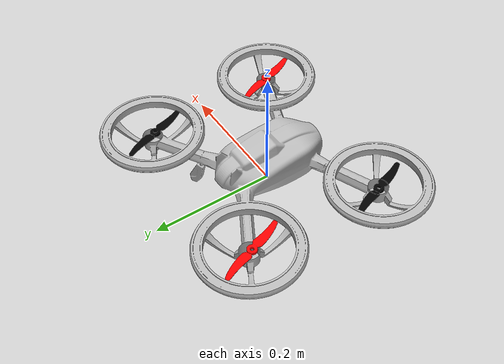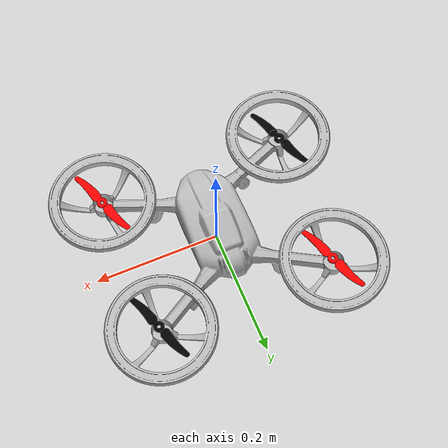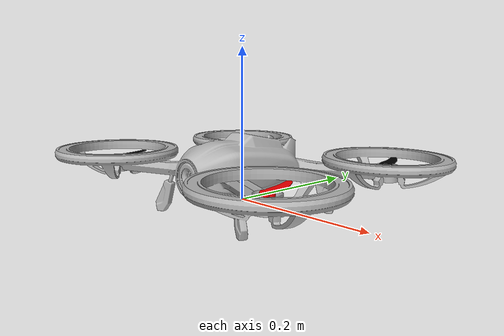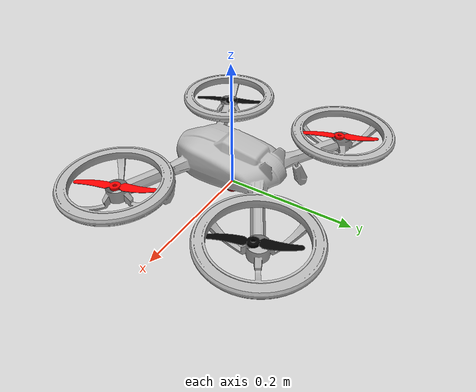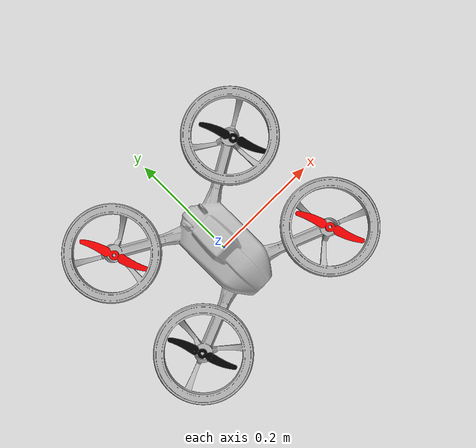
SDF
<?xml version="1.0" ?>
<sdf version="1.8">
  <model name="meu_drone_v2">

    <link name="base_link">
      <pose>0 0 0.04 0 0 0</pose>
      <inertial>
        <mass>1.5</mass>
        <inertia>
          <ixx>0.0547</ixx> <iyy>0.0558</iyy> <izz>0.0900</izz>
          <ixy>0</ixy> <ixz>0</ixz> <iyz>0</iyz>
        </inertia>
      </inertial>

      <visual name="base_link_visual">
        <pose>0 0 0 0 0 0</pose>
        <geometry>
          <mesh>
            <uri>model://meu_drone/meshes/Drone_corpo_fixed.stl</uri>
            <scale>0.001 0.001 0.001</scale>
          </mesh>
        </geometry>
      </visual>

      <collision name="base_link_collision">
        <pose>0 0 0 0 0 0</pose>
        <geometry>
          <mesh>
            <uri>model://meu_drone/meshes/Drone_corpo_fixed.stl</uri>
            <scale>0.001 0.001 0.001</scale>
          </mesh>
        </geometry>
      </collision>
    </link>

    <link name="rotor_0">
      <pose>0.15 -0.10 0.05 0 0 0</pose> <inertial>
        <mass>0.005</mass>
        <inertia><ixx>0.0001</ixx> <iyy>0.0001</iyy> <izz>0.0001</izz></inertia>
      </inertial>
      <visual name="rotor_0_visual">
        <pose>0 0 0 0 0 0</pose> <geometry>
          <mesh>
            <uri>model://meu_drone/meshes/helice.STL</uri>
            <scale>0.001 0.001 0.001</scale>
          </mesh>
        </geometry>
        <material><ambient>1 0 0 1</ambient></material> </visual>
      <collision name="rotor_0_collision">
         <geometry><cylinder><radius>0.06</radius><length>0.01</length></cylinder></geometry>
      </collision>
    </link>

    <joint name="rotor_0_joint" type="revolute">
      <parent>base_link</parent>
      <child>rotor_0</child>
      <axis>
        <xyz>0 0 1</xyz>
        <limit><lower>-1e16</lower> <upper>1e16</upper></limit>
      </axis>
    </joint>

    <link name="rotor_1">
      <pose>-0.14 0.12 0.05 0 0 0</pose>
      <inertial>
        <mass>0.005</mass>
        <inertia><ixx>0.0001</ixx> <iyy>0.0001</iyy> <izz>0.0001</izz></inertia>
      </inertial>
      <visual name="rotor_1_visual">
        <pose>0 0 0 0 0 0</pose>
        <geometry>
          <mesh>
            <uri>model://meu_drone/meshes/helice.STL</uri>
            <scale>0.001 0.001 0.001</scale>
          </mesh>
        </geometry>
        <material><ambient>1 0 0 1</ambient></material> </visual>
      <collision name="rotor_1_collision">
         <geometry><cylinder><radius>0.06</radius><length>0.01</length></cylinder></geometry>
      </collision>
    </link>

    <joint name="rotor_1_joint" type="revolute">
      <parent>base_link</parent>
      <child>rotor_1</child>
      <axis>
        <xyz>0 0 1</xyz>
        <limit><lower>-1e16</lower> <upper>1e16</upper></limit>
      </axis>
    </joint>

    <link name="rotor_2">
      <pose>0.14 0.12 0.05 0 0 0</pose>
      <inertial>
        <mass>0.005</mass>
        <inertia><ixx>0.0001</ixx> <iyy>0.0001</iyy> <izz>0.0001</izz></inertia>
      </inertial>
      <visual name="rotor_2_visual">
        <pose>0 0 0 0 0 0</pose>
        <geometry>
          <mesh>
            <uri>model://meu_drone/meshes/helice.STL</uri>
            <scale>0.001 0.001 0.001</scale>
          </mesh>
        </geometry>
        <material><ambient>0 0 0 1</ambient></material> </visual>
      <collision name="rotor_2_collision">
         <geometry><cylinder><radius>0.06</radius><length>0.01</length></cylinder></geometry>
      </collision>
    </link>

    <joint name="rotor_2_joint" type="revolute">
      <parent>base_link</parent>
      <child>rotor_2</child>
      <axis>
        <xyz>0 0 1</xyz>
        <limit><lower>-1e16</lower> <upper>1e16</upper></limit>
      </axis>
    </joint>

    <link name="rotor_3">
      <pose>-0.15 -0.10 0.05 0 0 0</pose>
      <inertial>
        <mass>0.005</mass>
        <inertia><ixx>0.0001</ixx> <iyy>0.0001</iyy> <izz>0.0001</izz></inertia>
      </inertial>
      <visual name="rotor_3_visual">
        <pose>0 0 0 0 0 0</pose>
        <geometry>
          <mesh>
            <uri>model://meu_drone/meshes/helice.STL</uri>
            <scale>0.001 0.001 0.001</scale>
          </mesh>
        </geometry>
        <material><ambient>0 0 0 1</ambient></material> </visual>
      <collision name="rotor_3_collision">
         <geometry><cylinder><radius>0.06</radius><length>0.01</length></cylinder></geometry>
      </collision>
    </link>

    <joint name="rotor_3_joint" type="revolute">
      <parent>base_link</parent>
      <child>rotor_3</child>
      <axis>
        <xyz>0 0 1</xyz>
        <limit><lower>-1e16</lower> <upper>1e16</upper></limit>
      </axis>
    </joint>

    <link name="tether_attach">
      <pose>0 0 -0.007 0 0 0</pose>
      <inertial>
        <mass>0.001</mass>
        <inertia>
          <ixx>1e-6</ixx> <iyy>1e-6</iyy> <izz>1e-6</izz>
          <ixy>0</ixy> <ixz>0</ixz> <iyz>0</iyz>
        </inertia>
      </inertial>
      <visual name="visual_tether_attach">
        <geometry><sphere><radius>0.012</radius></sphere></geometry>
        <material>
          <ambient>0.6 0.05 0.05 1</ambient>
          <diffuse>0.6 0.05 0.05 1</diffuse>
        </material>
      </visual>
      <collision name="collision_tether_attach">
        <geometry><sphere><radius>0.006</radius></sphere></geometry>
      </collision>
    </link>

    <joint name="tether_attach_fixed_joint" type="fixed">
      <parent>base_link</parent>
      <child>tether_attach</child>
    </joint>

    <plugin
      filename="gz-sim-multicopter-control-system"
      name="gz::sim::systems::MulticopterVelocityControl">
      <robotNamespace>meu_drone</robotNamespace>
      <commandSubTopic>cmd_vel</commandSubTopic>
      <comLinkName>base_link</comLinkName>
      <velocityGain>4.0 4.0 6.0</velocityGain>
      <attitudeGain>2 3 0.15</attitudeGain>
      <angularRateGain>4.0 4.0 0.5</angularRateGain>

      <rotorConfiguration>
        <rotor>
          <jointName>rotor_0_joint</jointName>
          <forceConstant>1.5e-03</forceConstant>
          <momentConstant>0.090</momentConstant>
          <direction>-1</direction>
        </rotor>
        <rotor>
          <jointName>rotor_1_joint</jointName>
          <forceConstant>1.5e-03</forceConstant>
          <momentConstant>0.090</momentConstant>
          <direction>-1</direction>
        </rotor>
        <rotor>
          <jointName>rotor_2_joint</jointName>
          <forceConstant>1.5e-03</forceConstant>
          <momentConstant>0.090</momentConstant>
          <direction>1</direction>
        </rotor>
        <rotor>
          <jointName>rotor_3_joint</jointName>
          <forceConstant>1.5e-03</forceConstant>
          <momentConstant>0.090</momentConstant>
          <direction>1</direction>
        </rotor>
      </rotorConfiguration>
    </plugin>

    <plugin filename="gz-sim-multicopter-motor-model-system" name="gz::sim::systems::MulticopterMotorModel">
      <jointName>rotor_0_joint</jointName>
      <linkName>rotor_0</linkName>
      <motorNumber>0</motorNumber>
      <turningDirection>cw</turningDirection>
      <motorConstant>1.5e-03</motorConstant>
      <momentConstant>0.090</momentConstant>
      <maxRotVelocity>10000</maxRotVelocity>
      <rotorVelocitySlowdownSim>1</rotorVelocitySlowdownSim>
      <robotNamespace>meu_drone</robotNamespace>
    </plugin>

    <plugin filename="gz-sim-multicopter-motor-model-system" name="gz::sim::systems::MulticopterMotorModel">
      <jointName>rotor_1_joint</jointName>
      <linkName>rotor_1</linkName>
      <motorNumber>1</motorNumber>
      <turningDirection>cw</turningDirection>
      <motorConstant>1.5e-03</motorConstant>
      <momentConstant>0.090</momentConstant>
      <maxRotVelocity>10000</maxRotVelocity>
      <rotorVelocitySlowdownSim>1</rotorVelocitySlowdownSim>
      <robotNamespace>meu_drone</robotNamespace>
    </plugin>

    <plugin filename="gz-sim-multicopter-motor-model-system" name="gz::sim::systems::MulticopterMotorModel">
      <jointName>rotor_2_joint</jointName>
      <linkName>rotor_2</linkName>
      <motorNumber>2</motorNumber>
      <turningDirection>ccw</turningDirection>
      <motorConstant>1.5e-03</motorConstant>
      <momentConstant>0.090</momentConstant>
      <maxRotVelocity>10000</maxRotVelocity>
      <rotorVelocitySlowdownSim>1</rotorVelocitySlowdownSim>
      <robotNamespace>meu_drone</robotNamespace>
    </plugin>

    <plugin filename="gz-sim-multicopter-motor-model-system" name="gz::sim::systems::MulticopterMotorModel">
      <jointName>rotor_3_joint</jointName>
      <linkName>rotor_3</linkName>
      <motorNumber>3</motorNumber>
      <turningDirection>ccw</turningDirection>
      <motorConstant>1.5e-03</motorConstant>
      <momentConstant>0.090</momentConstant>
      <maxRotVelocity>10000</maxRotVelocity>
      <rotorVelocitySlowdownSim>1</rotorVelocitySlowdownSim>
      <robotNamespace>meu_drone</robotNamespace>
    </plugin>

    <!-- PLUGIN DE ODOMETRIA (Sensor de posição) -->
    <plugin
      filename="gz-sim-odometry-publisher-system"
      name="gz::sim::systems::OdometryPublisher">
      <odom_frame>world</odom_frame>
      <robot_base_frame>base_link</robot_base_frame>
      <odom_topic>/meu_drone/odom</odom_topic>
      <odom_publish_frequency>50</odom_publish_frequency>
      <dimensions>3</dimensions>
    </plugin>

    <plugin filename="gz-sim-forcetorque-system" name="gz::sim::systems::ForceTorque"/>

  </model>
</sdf>
